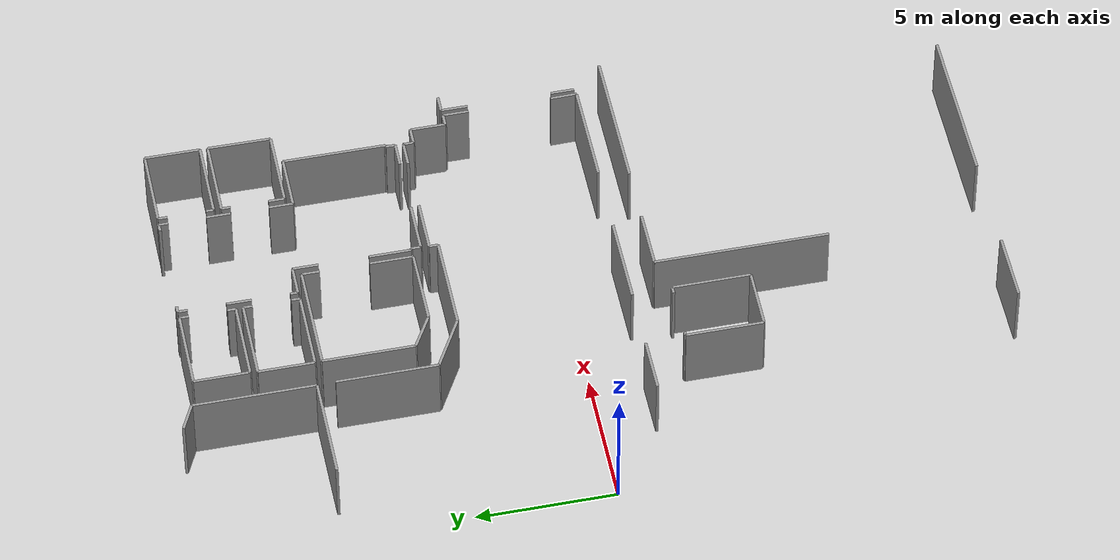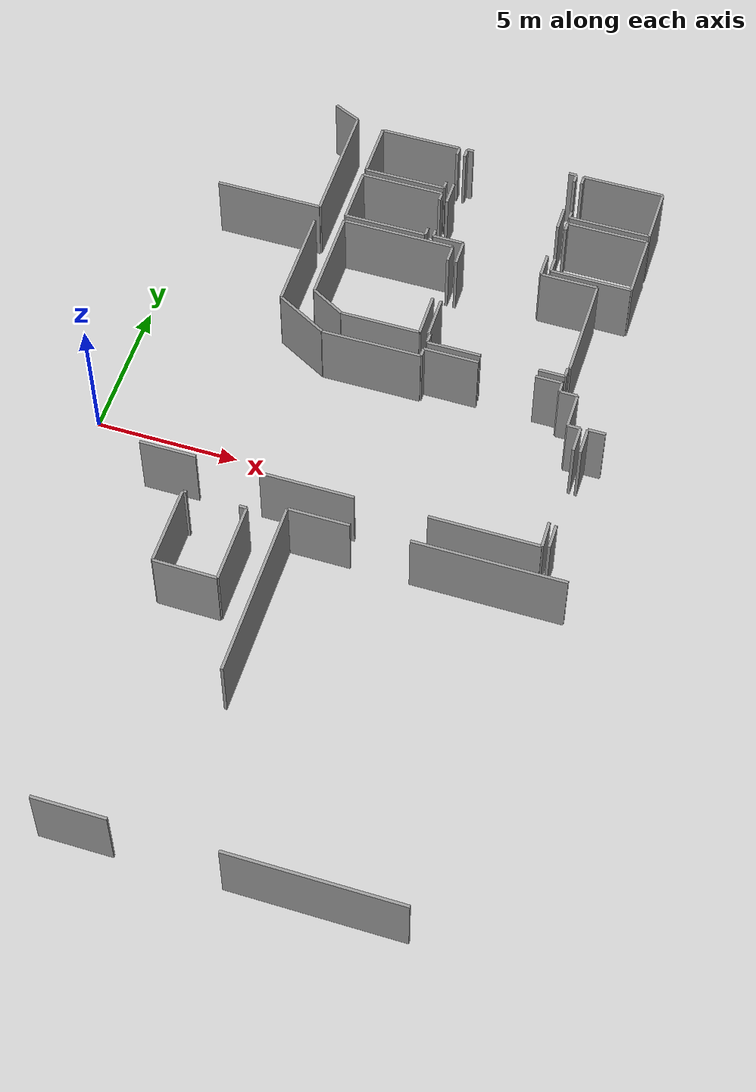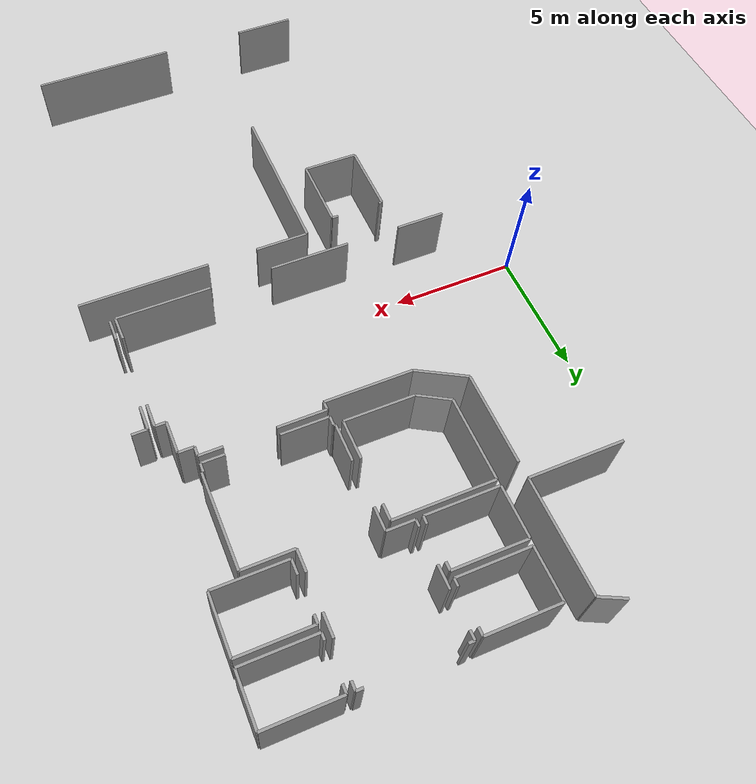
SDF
<sdf version="1.6">
 <world name="default">
  <model name="ground_plane">
   <static>1</static>
   <link name="link">
    <collision name="collision">
     <geometry><plane><normal>0 0 1</normal><size>100 100</size></plane></geometry>
     <surface><friction><ode><mu>100</mu><mu2>50</mu2></ode></friction></surface>
    </collision>
    <visual name="visual">
     <cast_shadows>0</cast_shadows>
     <geometry><plane><normal>0 0 1</normal><size>100 100</size></plane></geometry>
     <material>
      <script><uri>file://media/materials/scripts/gazebo.material</uri><name>Gazebo/Grey</name></script>
     </material>
    </visual>
   </link>
  </model>
  <model name="50056457">
   <static>1</static>
   <link name="Wall_110">
    <collision name="Wall_110_Collision">
     <geometry><box><size>3.77950755105 0.1 2.5</size></box></geometry>
     <pose>1.88975377553 0 1.25 0 0 0</pose>
    </collision>
    <visual name="Wall_110_Visual">
     <pose>1.88975377553 0 1.25 0 0 0</pose>
     <geometry><box><size>3.77950755105 0.1 2.5</size></box></geometry>
     <material>
      <script><uri>file://media/materials/scripts/gazebo.material</uri><name>Gazebo/Grey</name></script>
      <ambient>1 1 1 1</ambient>
     </material>
    </visual>
    <pose>70.8133792975 -16.9040258167 0 0 0 3.14159265359</pose>
   </link>
   <link name="Wall_111">
    <collision name="Wall_111_Collision">
     <geometry><box><size>3.22980103843 0.1 2.5</size></box></geometry>
     <pose>1.61490051921 0 1.25 0 0 0</pose>
    </collision>
    <visual name="Wall_111_Visual">
     <pose>1.61490051921 0 1.25 0 0 0</pose>
     <geometry><box><size>3.22980103843 0.1 2.5</size></box></geometry>
     <material>
      <script><uri>file://media/materials/scripts/gazebo.material</uri><name>Gazebo/Grey</name></script>
      <ambient>1 1 1 1</ambient>
     </material>
    </visual>
    <pose>64.5673919856 -16.9040258167 0 0 0 3.14159265359</pose>
   </link>
   <link name="Wall_112">
    <collision name="Wall_112_Collision">
     <geometry><box><size>1.94912885493 0.1 2.5</size></box></geometry>
     <pose>0.974564427467 0 1.25 0 0 0</pose>
    </collision>
    <visual name="Wall_112_Visual">
     <pose>0.974564427467 0 1.25 0 0 0</pose>
     <geometry><box><size>1.94912885493 0.1 2.5</size></box></geometry>
     <material>
      <script><uri>file://media/materials/scripts/gazebo.material</uri><name>Gazebo/Grey</name></script>
      <ambient>1 1 1 1</ambient>
     </material>
    </visual>
    <pose>59.1521475822 -16.9040258167 0 0 0 3.14159265359</pose>
   </link>
   <link name="Wall_141">
    <collision name="Wall_141_Collision">
     <geometry><box><size>1.02693180134 0.1 2.5</size></box></geometry>
     <pose>0.51346590067 0 1.25 0 0 0</pose>
    </collision>
    <visual name="Wall_141_Visual">
     <pose>0.51346590067 0 1.25 0 0 0</pose>
     <geometry><box><size>1.02693180134 0.1 2.5</size></box></geometry>
     <material>
      <script><uri>file://media/materials/scripts/gazebo.material</uri><name>Gazebo/Grey</name></script>
      <ambient>1 1 1 1</ambient>
     </material>
    </visual>
    <pose>58.7042511202 -0.716735979943 0 0 0 -0.438341227455</pose>
   </link>
   <link name="Wall_142">
    <collision name="Wall_142_Collision">
     <geometry><box><size>4.35309961631 0.1 2.5</size></box></geometry>
     <pose>2.17654980815 0 1.25 0 0 0</pose>
    </collision>
    <visual name="Wall_142_Visual">
     <pose>2.17654980815 0 1.25 0 0 0</pose>
     <geometry><box><size>4.35309961631 0.1 2.5</size></box></geometry>
     <material>
      <script><uri>file://media/materials/scripts/gazebo.material</uri><name>Gazebo/Grey</name></script>
      <ambient>1 1 1 1</ambient>
     </material>
    </visual>
    <pose>59.6340936619 -1.15260496515 0 0 0 -1.57079632679</pose>
   </link>
   <link name="Wall_143">
    <collision name="Wall_143_Collision">
     <geometry><box><size>3.74545793348 0.1 2.5</size></box></geometry>
     <pose>1.87272896674 0 1.25 0 0 0</pose>
    </collision>
    <visual name="Wall_143_Visual">
     <pose>1.87272896674 0 1.25 0 0 0</pose>
     <geometry><box><size>3.74545793348 0.1 2.5</size></box></geometry>
     <material>
      <script><uri>file://media/materials/scripts/gazebo.material</uri><name>Gazebo/Grey</name></script>
      <ambient>1 1 1 1</ambient>
     </material>
    </visual>
    <pose>59.6340936619 -5.50570458145 0 0 0 3.14159265359</pose>
   </link>
   <link name="Wall_146">
    <collision name="Wall_146_Collision">
     <geometry><box><size>3.60875125992 0.1 2.5</size></box></geometry>
     <pose>1.80437562996 0 1.25 0 0 0</pose>
    </collision>
    <visual name="Wall_146_Visual">
     <pose>1.80437562996 0 1.25 0 0 0</pose>
     <geometry><box><size>3.60875125992 0.1 2.5</size></box></geometry>
     <material>
      <script><uri>file://media/materials/scripts/gazebo.material</uri><name>Gazebo/Grey</name></script>
      <ambient>1 1 1 1</ambient>
     </material>
    </visual>
    <pose>59.6534053853 -6.15180031 0 0 0 -1.57079632679</pose>
   </link>
   <link name="Wall_147">
    <collision name="Wall_147_Collision">
     <geometry><box><size>2.04904807217 0.1 2.5</size></box></geometry>
     <pose>1.02452403608 0 1.25 0 0 0</pose>
    </collision>
    <visual name="Wall_147_Visual">
     <pose>1.02452403608 0 1.25 0 0 0</pose>
     <geometry><box><size>2.04904807217 0.1 2.5</size></box></geometry>
     <material>
      <script><uri>file://media/materials/scripts/gazebo.material</uri><name>Gazebo/Grey</name></script>
      <ambient>1 1 1 1</ambient>
     </material>
    </visual>
    <pose>59.6534053853 -9.76055156992 0 0 0 -0.504994664369</pose>
   </link>
   <link name="Wall_148">
    <collision name="Wall_148_Collision">
     <geometry><box><size>3.48627427729 0.1 2.5</size></box></geometry>
     <pose>1.74313713865 0 1.25 0 0 0</pose>
    </collision>
    <visual name="Wall_148_Visual">
     <pose>1.74313713865 0 1.25 0 0 0</pose>
     <geometry><box><size>3.48627427729 0.1 2.5</size></box></geometry>
     <material>
      <script><uri>file://media/materials/scripts/gazebo.material</uri><name>Gazebo/Grey</name></script>
      <ambient>1 1 1 1</ambient>
     </material>
    </visual>
    <pose>61.4466852443 -10.7518867046 0 0 0 0.0</pose>
   </link>
   <link name="Wall_149">
    <collision name="Wall_149_Collision">
     <geometry><box><size>0.323047864276 0.1 2.5</size></box></geometry>
     <pose>0.161523932138 0 1.25 0 0 0</pose>
    </collision>
    <visual name="Wall_149_Visual">
     <pose>0.161523932138 0 1.25 0 0 0</pose>
     <geometry><box><size>0.323047864276 0.1 2.5</size></box></geometry>
     <material>
      <script><uri>file://media/materials/scripts/gazebo.material</uri><name>Gazebo/Grey</name></script>
      <ambient>1 1 1 1</ambient>
     </material>
    </visual>
    <pose>64.9329595216 -10.7518867046 0 0 0 1.57079632679</pose>
   </link>
   <link name="Wall_150">
    <collision name="Wall_150_Collision">
     <geometry><box><size>1.91592624277 0.1 2.5</size></box></geometry>
     <pose>0.957963121384 0 1.25 0 0 0</pose>
    </collision>
    <visual name="Wall_150_Visual">
     <pose>0.957963121384 0 1.25 0 0 0</pose>
     <geometry><box><size>1.91592624277 0.1 2.5</size></box></geometry>
     <material>
      <script><uri>file://media/materials/scripts/gazebo.material</uri><name>Gazebo/Grey</name></script>
      <ambient>1 1 1 1</ambient>
     </material>
    </visual>
    <pose>64.9329595216 -10.4288388403 0 0 0 0.0</pose>
   </link>
   <link name="Wall_151">
    <collision name="Wall_151_Collision">
     <geometry><box><size>0.924421707055 0.1 2.5</size></box></geometry>
     <pose>0.462210853527 0 1.25 0 0 0</pose>
    </collision>
    <visual name="Wall_151_Visual">
     <pose>0.462210853527 0 1.25 0 0 0</pose>
     <geometry><box><size>0.924421707055 0.1 2.5</size></box></geometry>
     <material>
      <script><uri>file://media/materials/scripts/gazebo.material</uri><name>Gazebo/Grey</name></script>
      <ambient>1 1 1 1</ambient>
     </material>
    </visual>
    <pose>68.8203755622 -10.4288388403 0 0 0 0.0</pose>
   </link>
   <link name="Wall_152">
    <collision name="Wall_152_Collision">
     <geometry><box><size>0.367600348966 0.1 2.5</size></box></geometry>
     <pose>0.183800174483 0 1.25 0 0 0</pose>
    </collision>
    <visual name="Wall_152_Visual">
     <pose>0.183800174483 0 1.25 0 0 0</pose>
     <geometry><box><size>0.367600348966 0.1 2.5</size></box></geometry>
     <material>
      <script><uri>file://media/materials/scripts/gazebo.material</uri><name>Gazebo/Grey</name></script>
      <ambient>1 1 1 1</ambient>
     </material>
    </visual>
    <pose>69.7447972693 -10.4288388403 0 0 0 -1.57079632679</pose>
   </link>
   <link name="Wall_153">
    <collision name="Wall_153_Collision">
     <geometry><box><size>0.612723715305 0.1 2.5</size></box></geometry>
     <pose>0.306361857652 0 1.25 0 0 0</pose>
    </collision>
    <visual name="Wall_153_Visual">
     <pose>0.306361857652 0 1.25 0 0 0</pose>
     <geometry><box><size>0.612723715305 0.1 2.5</size></box></geometry>
     <material>
      <script><uri>file://media/materials/scripts/gazebo.material</uri><name>Gazebo/Grey</name></script>
      <ambient>1 1 1 1</ambient>
     </material>
    </visual>
    <pose>69.7447972693 -10.7964391892 0 0 0 0.0</pose>
   </link>
   <link name="Wall_154">
    <collision name="Wall_154_Collision">
     <geometry><box><size>1.26203806442 0.1 2.5</size></box></geometry>
     <pose>0.631019032212 0 1.25 0 0 0</pose>
    </collision>
    <visual name="Wall_154_Visual">
     <pose>0.631019032212 0 1.25 0 0 0</pose>
     <geometry><box><size>1.26203806442 0.1 2.5</size></box></geometry>
     <material>
      <script><uri>file://media/materials/scripts/gazebo.material</uri><name>Gazebo/Grey</name></script>
      <ambient>1 1 1 1</ambient>
     </material>
    </visual>
    <pose>70.3575209846 -10.7964391892 0 0 0 -1.57079632679</pose>
   </link>
   <link name="Wall_155">
    <collision name="Wall_155_Collision">
     <geometry><box><size>0.434344375461 0.1 2.5</size></box></geometry>
     <pose>0.21717218773 0 1.25 0 0 0</pose>
    </collision>
    <visual name="Wall_155_Visual">
     <pose>0.21717218773 0 1.25 0 0 0</pose>
     <geometry><box><size>0.434344375461 0.1 2.5</size></box></geometry>
     <material>
      <script><uri>file://media/materials/scripts/gazebo.material</uri><name>Gazebo/Grey</name></script>
      <ambient>1 1 1 1</ambient>
     </material>
    </visual>
    <pose>70.3575209846 -12.0584772537 0 0 0 0.0</pose>
   </link>
   <link name="Wall_156">
    <collision name="Wall_156_Collision">
     <geometry><box><size>0.920186679993 0.1 2.5</size></box></geometry>
     <pose>0.460093339996 0 1.25 0 0 0</pose>
    </collision>
    <visual name="Wall_156_Visual">
     <pose>0.460093339996 0 1.25 0 0 0</pose>
     <geometry><box><size>0.920186679993 0.1 2.5</size></box></geometry>
     <material>
      <script><uri>file://media/materials/scripts/gazebo.material</uri><name>Gazebo/Grey</name></script>
      <ambient>1 1 1 1</ambient>
     </material>
    </visual>
    <pose>70.79186536 -12.0584772537 0 0 0 -1.57079632679</pose>
   </link>
   <link name="Wall_157">
    <collision name="Wall_157_Collision">
     <geometry><box><size>0.950752917011 0.1 2.5</size></box></geometry>
     <pose>0.475376458505 0 1.25 0 0 0</pose>
    </collision>
    <visual name="Wall_157_Visual">
     <pose>0.475376458505 0 1.25 0 0 0</pose>
     <geometry><box><size>0.950752917011 0.1 2.5</size></box></geometry>
     <material>
      <script><uri>file://media/materials/scripts/gazebo.material</uri><name>Gazebo/Grey</name></script>
      <ambient>1 1 1 1</ambient>
     </material>
    </visual>
    <pose>70.79186536 -15.953516343 0 0 0 -1.54816607922</pose>
   </link>
   <link name="Wall_167">
    <collision name="Wall_167_Collision">
     <geometry><box><size>2.79410145431 0.1 2.5</size></box></geometry>
     <pose>1.39705072715 0 1.25 0 0 0</pose>
    </collision>
    <visual name="Wall_167_Visual">
     <pose>1.39705072715 0 1.25 0 0 0</pose>
     <geometry><box><size>2.79410145431 0.1 2.5</size></box></geometry>
     <material>
      <script><uri>file://media/materials/scripts/gazebo.material</uri><name>Gazebo/Grey</name></script>
      <ambient>1 1 1 1</ambient>
     </material>
    </visual>
    <pose>61.3968813261 -21.1241455833 0 0 0 1.57079632679</pose>
   </link>
   <link name="Wall_168">
    <collision name="Wall_168_Collision">
     <geometry><box><size>0.250205398812 0.1 2.5</size></box></geometry>
     <pose>0.125102699406 0 1.25 0 0 0</pose>
    </collision>
    <visual name="Wall_168_Visual">
     <pose>0.125102699406 0 1.25 0 0 0</pose>
     <geometry><box><size>0.250205398812 0.1 2.5</size></box></geometry>
     <material>
      <script><uri>file://media/materials/scripts/gazebo.material</uri><name>Gazebo/Grey</name></script>
      <ambient>1 1 1 1</ambient>
     </material>
    </visual>
    <pose>61.3968813261 -18.330044129 0 0 0 3.14159265359</pose>
   </link>
   <link name="Wall_169">
    <collision name="Wall_169_Collision">
     <geometry><box><size>0.134843261648 0.1 2.5</size></box></geometry>
     <pose>0.0674216308242 0 1.25 0 0 0</pose>
    </collision>
    <visual name="Wall_169_Visual">
     <pose>0.0674216308242 0 1.25 0 0 0</pose>
     <geometry><box><size>0.134843261648 0.1 2.5</size></box></geometry>
     <material>
      <script><uri>file://media/materials/scripts/gazebo.material</uri><name>Gazebo/Grey</name></script>
      <ambient>1 1 1 1</ambient>
     </material>
    </visual>
    <pose>59.3481446346 -18.330044129 0 0 0 3.14159265359</pose>
   </link>
   <link name="Wall_170">
    <collision name="Wall_170_Collision">
     <geometry><box><size>2.76886069302 0.1 2.5</size></box></geometry>
     <pose>1.38443034651 0 1.25 0 0 0</pose>
    </collision>
    <visual name="Wall_170_Visual">
     <pose>1.38443034651 0 1.25 0 0 0</pose>
     <geometry><box><size>2.76886069302 0.1 2.5</size></box></geometry>
     <material>
      <script><uri>file://media/materials/scripts/gazebo.material</uri><name>Gazebo/Grey</name></script>
      <ambient>1 1 1 1</ambient>
     </material>
    </visual>
    <pose>59.213301373 -18.330044129 0 0 0 -1.57079632679</pose>
   </link>
   <link name="Wall_171">
    <collision name="Wall_171_Collision">
     <geometry><box><size>2.18372583158 0.1 2.5</size></box></geometry>
     <pose>1.09186291579 0 1.25 0 0 0</pose>
    </collision>
    <visual name="Wall_171_Visual">
     <pose>1.09186291579 0 1.25 0 0 0</pose>
     <geometry><box><size>2.18372583158 0.1 2.5</size></box></geometry>
     <material>
      <script><uri>file://media/materials/scripts/gazebo.material</uri><name>Gazebo/Grey</name></script>
      <ambient>1 1 1 1</ambient>
     </material>
    </visual>
    <pose>59.213301373 -21.098904822 0 0 0 -0.0115588335256</pose>
   </link>
   <link name="Wall_173">
    <collision name="Wall_173_Collision">
     <geometry><box><size>5.84501494965 0.1 2.5</size></box></geometry>
     <pose>2.92250747482 0 1.25 0 0 0</pose>
    </collision>
    <visual name="Wall_173_Visual">
     <pose>2.92250747482 0 1.25 0 0 0</pose>
     <geometry><box><size>5.84501494965 0.1 2.5</size></box></geometry>
     <material>
      <script><uri>file://media/materials/scripts/gazebo.material</uri><name>Gazebo/Grey</name></script>
      <ambient>1 1 1 1</ambient>
     </material>
    </visual>
    <pose>70.4654294741 -30.0258336651 0 0 0 3.14159265359</pose>
   </link>
   <link name="Wall_174">
    <collision name="Wall_174_Collision">
     <geometry><box><size>2.45919551426 0.1 2.5</size></box></geometry>
     <pose>1.22959775713 0 1.25 0 0 0</pose>
    </collision>
    <visual name="Wall_174_Visual">
     <pose>1.22959775713 0 1.25 0 0 0</pose>
     <geometry><box><size>2.45919551426 0.1 2.5</size></box></geometry>
     <material>
      <script><uri>file://media/materials/scripts/gazebo.material</uri><name>Gazebo/Grey</name></script>
      <ambient>1 1 1 1</ambient>
     </material>
    </visual>
    <pose>61.1336320439 -30.0258336651 0 0 0 3.14159265359</pose>
   </link>
   <link name="Wall_177">
    <collision name="Wall_177_Collision">
     <geometry><box><size>6.24022767505 0.1 2.5</size></box></geometry>
     <pose>3.12011383753 0 1.25 0 0 0</pose>
    </collision>
    <visual name="Wall_177_Visual">
     <pose>3.12011383753 0 1.25 0 0 0</pose>
     <geometry><box><size>6.24022767505 0.1 2.5</size></box></geometry>
     <material>
      <script><uri>file://media/materials/scripts/gazebo.material</uri><name>Gazebo/Grey</name></script>
      <ambient>1 1 1 1</ambient>
     </material>
    </visual>
    <pose>62.6385912606 -24.2070758832 0 0 0 1.57079632679</pose>
   </link>
   <link name="Wall_178">
    <collision name="Wall_178_Collision">
     <geometry><box><size>2.12649178828 0.1 2.5</size></box></geometry>
     <pose>1.06324589414 0 1.25 0 0 0</pose>
    </collision>
    <visual name="Wall_178_Visual">
     <pose>1.06324589414 0 1.25 0 0 0</pose>
     <geometry><box><size>2.12649178828 0.1 2.5</size></box></geometry>
     <material>
      <script><uri>file://media/materials/scripts/gazebo.material</uri><name>Gazebo/Grey</name></script>
      <ambient>1 1 1 1</ambient>
     </material>
    </visual>
    <pose>62.6385912606 -17.9668482082 0 0 0 0.0</pose>
   </link>
   <link name="Wall_179">
    <collision name="Wall_179_Collision">
     <geometry><box><size>5.19654760594 0.1 2.5</size></box></geometry>
     <pose>2.59827380297 0 1.25 0 0 0</pose>
    </collision>
    <visual name="Wall_179_Visual">
     <pose>2.59827380297 0 1.25 0 0 0</pose>
     <geometry><box><size>5.19654760594 0.1 2.5</size></box></geometry>
     <material>
      <script><uri>file://media/materials/scripts/gazebo.material</uri><name>Gazebo/Grey</name></script>
      <ambient>1 1 1 1</ambient>
     </material>
    </visual>
    <pose>66.768081448 -17.9668482082 0 0 0 0.0</pose>
   </link>
   <link name="Wall_183">
    <collision name="Wall_183_Collision">
     <geometry><box><size>0.901044357673 0.1 2.5</size></box></geometry>
     <pose>0.450522178837 0 1.25 0 0 0</pose>
    </collision>
    <visual name="Wall_183_Visual">
     <pose>0.450522178837 0 1.25 0 0 0</pose>
     <geometry><box><size>0.901044357673 0.1 2.5</size></box></geometry>
     <material>
      <script><uri>file://media/materials/scripts/gazebo.material</uri><name>Gazebo/Grey</name></script>
      <ambient>1 1 1 1</ambient>
     </material>
    </visual>
    <pose>69.7559777407 -10.1393323903 0 0 0 3.14159265359</pose>
   </link>
   <link name="Wall_184">
    <collision name="Wall_184_Collision">
     <geometry><box><size>1.86967974725 0.1 2.5</size></box></geometry>
     <pose>0.934839873627 0 1.25 0 0 0</pose>
    </collision>
    <visual name="Wall_184_Visual">
     <pose>0.934839873627 0 1.25 0 0 0</pose>
     <geometry><box><size>1.86967974725 0.1 2.5</size></box></geometry>
     <material>
      <script><uri>file://media/materials/scripts/gazebo.material</uri><name>Gazebo/Grey</name></script>
      <ambient>1 1 1 1</ambient>
     </material>
    </visual>
    <pose>66.8361806832 -10.1393323903 0 0 0 3.14159265359</pose>
   </link>
   <link name="Wall_185">
    <collision name="Wall_185_Collision">
     <geometry><box><size>0.356419877523 0.1 2.5</size></box></geometry>
     <pose>0.178209938762 0 1.25 0 0 0</pose>
    </collision>
    <visual name="Wall_185_Visual">
     <pose>0.178209938762 0 1.25 0 0 0</pose>
     <geometry><box><size>0.356419877523 0.1 2.5</size></box></geometry>
     <material>
      <script><uri>file://media/materials/scripts/gazebo.material</uri><name>Gazebo/Grey</name></script>
      <ambient>1 1 1 1</ambient>
     </material>
    </visual>
    <pose>64.9665009359 -10.1393323903 0 0 0 1.57079632679</pose>
   </link>
   <link name="Wall_186">
    <collision name="Wall_186_Collision">
     <geometry><box><size>0.0669134275768 0.1 2.5</size></box></geometry>
     <pose>0.0334567137884 0 1.25 0 0 0</pose>
    </collision>
    <visual name="Wall_186_Visual">
     <pose>0.0334567137884 0 1.25 0 0 0</pose>
     <geometry><box><size>0.0669134275768 0.1 2.5</size></box></geometry>
     <material>
      <script><uri>file://media/materials/scripts/gazebo.material</uri><name>Gazebo/Grey</name></script>
      <ambient>1 1 1 1</ambient>
     </material>
    </visual>
    <pose>64.9665009359 -9.78291251281 0 0 0 3.14159265359</pose>
   </link>
   <link name="Wall_187">
    <collision name="Wall_187_Collision">
     <geometry><box><size>1.49259293767 0.1 2.5</size></box></geometry>
     <pose>0.746296468834 0 1.25 0 0 0</pose>
    </collision>
    <visual name="Wall_187_Visual">
     <pose>0.746296468834 0 1.25 0 0 0</pose>
     <geometry><box><size>1.49259293767 0.1 2.5</size></box></geometry>
     <material>
      <script><uri>file://media/materials/scripts/gazebo.material</uri><name>Gazebo/Grey</name></script>
      <ambient>1 1 1 1</ambient>
     </material>
    </visual>
    <pose>64.8995875084 -9.78291251281 0 0 0 1.57079632679</pose>
   </link>
   <link name="Wall_188">
    <collision name="Wall_188_Collision">
     <geometry><box><size>0.910700219374 0.1 2.5</size></box></geometry>
     <pose>0.455350109687 0 1.25 0 0 0</pose>
    </collision>
    <visual name="Wall_188_Visual">
     <pose>0.455350109687 0 1.25 0 0 0</pose>
     <geometry><box><size>0.910700219374 0.1 2.5</size></box></geometry>
     <material>
      <script><uri>file://media/materials/scripts/gazebo.material</uri><name>Gazebo/Grey</name></script>
      <ambient>1 1 1 1</ambient>
     </material>
    </visual>
    <pose>64.8995875084 -6.49703971608 0 0 0 1.57079632679</pose>
   </link>
   <link name="Wall_189">
    <collision name="Wall_189_Collision">
     <geometry><box><size>1.08840195489 0.1 2.5</size></box></geometry>
     <pose>0.544200977444 0 1.25 0 0 0</pose>
    </collision>
    <visual name="Wall_189_Visual">
     <pose>0.544200977444 0 1.25 0 0 0</pose>
     <geometry><box><size>1.08840195489 0.1 2.5</size></box></geometry>
     <material>
      <script><uri>file://media/materials/scripts/gazebo.material</uri><name>Gazebo/Grey</name></script>
      <ambient>1 1 1 1</ambient>
     </material>
    </visual>
    <pose>64.8995875084 -5.58633949671 0 0 0 3.14159265359</pose>
   </link>
   <link name="Wall_190">
    <collision name="Wall_190_Collision">
     <geometry><box><size>0.273921550359 0.1 2.5</size></box></geometry>
     <pose>0.136960775179 0 1.25 0 0 0</pose>
    </collision>
    <visual name="Wall_190_Visual">
     <pose>0.136960775179 0 1.25 0 0 0</pose>
     <geometry><box><size>0.273921550359 0.1 2.5</size></box></geometry>
     <material>
      <script><uri>file://media/materials/scripts/gazebo.material</uri><name>Gazebo/Grey</name></script>
      <ambient>1 1 1 1</ambient>
     </material>
    </visual>
    <pose>63.8111855535 -5.58633949671 0 0 0 1.57079632679</pose>
   </link>
   <link name="Wall_191">
    <collision name="Wall_191_Collision">
     <geometry><box><size>0.884443051591 0.1 2.5</size></box></geometry>
     <pose>0.442221525796 0 1.25 0 0 0</pose>
    </collision>
    <visual name="Wall_191_Visual">
     <pose>0.442221525796 0 1.25 0 0 0</pose>
     <geometry><box><size>0.884443051591 0.1 2.5</size></box></geometry>
     <material>
      <script><uri>file://media/materials/scripts/gazebo.material</uri><name>Gazebo/Grey</name></script>
      <ambient>1 1 1 1</ambient>
     </material>
    </visual>
    <pose>63.8111855535 -3.95043324327 0 0 0 1.57079632679</pose>
   </link>
   <link name="Wall_192">
    <collision name="Wall_192_Collision">
     <geometry><box><size>0.344222999585 0.1 2.5</size></box></geometry>
     <pose>0.172111499792 0 1.25 0 0 0</pose>
    </collision>
    <visual name="Wall_192_Visual">
     <pose>0.172111499792 0 1.25 0 0 0</pose>
     <geometry><box><size>0.344222999585 0.1 2.5</size></box></geometry>
     <material>
      <script><uri>file://media/materials/scripts/gazebo.material</uri><name>Gazebo/Grey</name></script>
      <ambient>1 1 1 1</ambient>
     </material>
    </visual>
    <pose>63.8111855535 -1.70824051566 0 0 0 1.57079632679</pose>
   </link>
   <link name="Wall_193">
    <collision name="Wall_193_Collision">
     <geometry><box><size>0.236145108967 0.1 2.5</size></box></geometry>
     <pose>0.118072554484 0 1.25 0 0 0</pose>
    </collision>
    <visual name="Wall_193_Visual">
     <pose>0.118072554484 0 1.25 0 0 0</pose>
     <geometry><box><size>0.236145108967 0.1 2.5</size></box></geometry>
     <material>
      <script><uri>file://media/materials/scripts/gazebo.material</uri><name>Gazebo/Grey</name></script>
      <ambient>1 1 1 1</ambient>
     </material>
    </visual>
    <pose>63.8111855535 -1.36401751607 0 0 0 0.0</pose>
   </link>
   <link name="Wall_194">
    <collision name="Wall_194_Collision">
     <geometry><box><size>0.267484309225 0.1 2.5</size></box></geometry>
     <pose>0.133742154612 0 1.25 0 0 0</pose>
    </collision>
    <visual name="Wall_194_Visual">
     <pose>0.133742154612 0 1.25 0 0 0</pose>
     <geometry><box><size>0.267484309225 0.1 2.5</size></box></geometry>
     <material>
      <script><uri>file://media/materials/scripts/gazebo.material</uri><name>Gazebo/Grey</name></script>
      <ambient>1 1 1 1</ambient>
     </material>
    </visual>
    <pose>67.5620643216 -1.36401751607 0 0 0 0.0</pose>
   </link>
   <link name="Wall_195">
    <collision name="Wall_195_Collision">
     <geometry><box><size>0.331179116235 0.1 2.5</size></box></geometry>
     <pose>0.165589558117 0 1.25 0 0 0</pose>
    </collision>
    <visual name="Wall_195_Visual">
     <pose>0.165589558117 0 1.25 0 0 0</pose>
     <geometry><box><size>0.331179116235 0.1 2.5</size></box></geometry>
     <material>
      <script><uri>file://media/materials/scripts/gazebo.material</uri><name>Gazebo/Grey</name></script>
      <ambient>1 1 1 1</ambient>
     </material>
    </visual>
    <pose>67.8295486308 -1.36401751607 0 0 0 -1.57079632679</pose>
   </link>
   <link name="Wall_196">
    <collision name="Wall_196_Collision">
     <geometry><box><size>0.871568569323 0.1 2.5</size></box></geometry>
     <pose>0.435784284662 0 1.25 0 0 0</pose>
    </collision>
    <visual name="Wall_196_Visual">
     <pose>0.435784284662 0 1.25 0 0 0</pose>
     <geometry><box><size>0.871568569323 0.1 2.5</size></box></geometry>
     <material>
      <script><uri>file://media/materials/scripts/gazebo.material</uri><name>Gazebo/Grey</name></script>
      <ambient>1 1 1 1</ambient>
     </material>
    </visual>
    <pose>67.8295486308 -3.04108823255 0 0 0 -1.57079632679</pose>
   </link>
   <link name="Wall_197">
    <collision name="Wall_197_Collision">
     <geometry><box><size>0.849038225354 0.1 2.5</size></box></geometry>
     <pose>0.424519112677 0 1.25 0 0 0</pose>
    </collision>
    <visual name="Wall_197_Visual">
     <pose>0.424519112677 0 1.25 0 0 0</pose>
     <geometry><box><size>0.849038225354 0.1 2.5</size></box></geometry>
     <material>
      <script><uri>file://media/materials/scripts/gazebo.material</uri><name>Gazebo/Grey</name></script>
      <ambient>1 1 1 1</ambient>
     </material>
    </visual>
    <pose>67.8295486308 -5.27481090604 0 0 0 -1.57079632679</pose>
   </link>
   <link name="Wall_198">
    <collision name="Wall_198_Collision">
     <geometry><box><size>1.99368133962 0.1 2.5</size></box></geometry>
     <pose>0.996840669812 0 1.25 0 0 0</pose>
    </collision>
    <visual name="Wall_198_Visual">
     <pose>0.996840669812 0 1.25 0 0 0</pose>
     <geometry><box><size>1.99368133962 0.1 2.5</size></box></geometry>
     <material>
      <script><uri>file://media/materials/scripts/gazebo.material</uri><name>Gazebo/Grey</name></script>
      <ambient>1 1 1 1</ambient>
     </material>
    </visual>
    <pose>67.8295486308 -6.1238491314 0 0 0 0.0</pose>
   </link>
   <link name="Wall_199">
    <collision name="Wall_199_Collision">
     <geometry><box><size>3.67634229183 0.1 2.5</size></box></geometry>
     <pose>1.83817114591 0 1.25 0 0 0</pose>
    </collision>
    <visual name="Wall_199_Visual">
     <pose>1.83817114591 0 1.25 0 0 0</pose>
     <geometry><box><size>3.67634229183 0.1 2.5</size></box></geometry>
     <material>
      <script><uri>file://media/materials/scripts/gazebo.material</uri><name>Gazebo/Grey</name></script>
      <ambient>1 1 1 1</ambient>
     </material>
    </visual>
    <pose>69.8232299704 -6.1238491314 0 0 0 -1.57079632679</pose>
   </link>
   <link name="Wall_200">
    <collision name="Wall_200_Collision">
     <geometry><box><size>0.0581045712882 0.1 2.5</size></box></geometry>
     <pose>0.0290522856441 0 1.25 0 0 0</pose>
    </collision>
    <visual name="Wall_200_Visual">
     <pose>0.0290522856441 0 1.25 0 0 0</pose>
     <geometry><box><size>0.0581045712882 0.1 2.5</size></box></geometry>
     <material>
      <script><uri>file://media/materials/scripts/gazebo.material</uri><name>Gazebo/Grey</name></script>
      <ambient>1 1 1 1</ambient>
     </material>
    </visual>
    <pose>69.8232299704 -9.80019142322 0 0 0 3.14159265359</pose>
   </link>
   <link name="Wall_201">
    <collision name="Wall_201_Collision">
     <geometry><box><size>0.339264314699 0.1 2.5</size></box></geometry>
     <pose>0.169632157349 0 1.25 0 0 0</pose>
    </collision>
    <visual name="Wall_201_Visual">
     <pose>0.169632157349 0 1.25 0 0 0</pose>
     <geometry><box><size>0.339264314699 0.1 2.5</size></box></geometry>
     <material>
      <script><uri>file://media/materials/scripts/gazebo.material</uri><name>Gazebo/Grey</name></script>
      <ambient>1 1 1 1</ambient>
     </material>
    </visual>
    <pose>69.7651253992 -9.80019142322 0 0 0 -1.59776281527</pose>
   </link>
   <link name="Wall_202">
    <collision name="Wall_202_Collision">
     <geometry><box><size>2.78292098287 0.1 2.5</size></box></geometry>
     <pose>1.39146049143 0 1.25 0 0 0</pose>
    </collision>
    <visual name="Wall_202_Visual">
     <pose>1.39146049143 0 1.25 0 0 0</pose>
     <geometry><box><size>2.78292098287 0.1 2.5</size></box></geometry>
     <material>
      <script><uri>file://media/materials/scripts/gazebo.material</uri><name>Gazebo/Grey</name></script>
      <ambient>1 1 1 1</ambient>
     </material>
    </visual>
    <pose>64.5972065762 -9.80391824704 0 0 0 3.14159265359</pose>
   </link>
   <link name="Wall_203">
    <collision name="Wall_203_Collision">
     <geometry><box><size>1.34642491077 0.1 2.5</size></box></geometry>
     <pose>0.673212455384 0 1.25 0 0 0</pose>
    </collision>
    <visual name="Wall_203_Visual">
     <pose>0.673212455384 0 1.25 0 0 0</pose>
     <geometry><box><size>1.34642491077 0.1 2.5</size></box></geometry>
     <material>
      <script><uri>file://media/materials/scripts/gazebo.material</uri><name>Gazebo/Grey</name></script>
      <ambient>1 1 1 1</ambient>
     </material>
    </visual>
    <pose>61.8142855933 -9.80391824704 0 0 0 2.62322681384</pose>
   </link>
   <link name="Wall_204">
    <collision name="Wall_204_Collision">
     <geometry><box><size>3.28299297833 0.1 2.5</size></box></geometry>
     <pose>1.64149648916 0 1.25 0 0 0</pose>
    </collision>
    <visual name="Wall_204_Visual">
     <pose>1.64149648916 0 1.25 0 0 0</pose>
     <geometry><box><size>3.28299297833 0.1 2.5</size></box></geometry>
     <material>
      <script><uri>file://media/materials/scripts/gazebo.material</uri><name>Gazebo/Grey</name></script>
      <ambient>1 1 1 1</ambient>
     </material>
    </visual>
    <pose>60.6447405199 -9.13681678426 0 0 0 1.57079632679</pose>
   </link>
   <link name="Wall_205">
    <collision name="Wall_205_Collision">
     <geometry><box><size>3.95043324327 0.1 2.5</size></box></geometry>
     <pose>1.97521662163 0 1.25 0 0 0</pose>
    </collision>
    <visual name="Wall_205_Visual">
     <pose>1.97521662163 0 1.25 0 0 0</pose>
     <geometry><box><size>3.95043324327 0.1 2.5</size></box></geometry>
     <material>
      <script><uri>file://media/materials/scripts/gazebo.material</uri><name>Gazebo/Grey</name></script>
      <ambient>1 1 1 1</ambient>
     </material>
    </visual>
    <pose>60.6447405199 -5.85382380593 0 0 0 0.0</pose>
   </link>
   <link name="Wall_206">
    <collision name="Wall_206_Collision">
     <geometry><box><size>0.631696636542 0.1 2.5</size></box></geometry>
     <pose>0.315848318271 0 1.25 0 0 0</pose>
    </collision>
    <visual name="Wall_206_Visual">
     <pose>0.315848318271 0 1.25 0 0 0</pose>
     <geometry><box><size>0.631696636542 0.1 2.5</size></box></geometry>
     <material>
      <script><uri>file://media/materials/scripts/gazebo.material</uri><name>Gazebo/Grey</name></script>
      <ambient>1 1 1 1</ambient>
     </material>
    </visual>
    <pose>64.5951737632 -5.85382380593 0 0 0 -1.57079632679</pose>
   </link>
   <link name="Wall_207">
    <collision name="Wall_207_Collision">
     <geometry><box><size>1.54985183668 0.1 2.5</size></box></geometry>
     <pose>0.774925918341 0 1.25 0 0 0</pose>
    </collision>
    <visual name="Wall_207_Visual">
     <pose>0.774925918341 0 1.25 0 0 0</pose>
     <geometry><box><size>1.54985183668 0.1 2.5</size></box></geometry>
     <material>
      <script><uri>file://media/materials/scripts/gazebo.material</uri><name>Gazebo/Grey</name></script>
      <ambient>1 1 1 1</ambient>
     </material>
    </visual>
    <pose>64.5951737632 -8.25406774349 0 0 0 -1.56948470879</pose>
   </link>
   <link name="Wall_208">
    <collision name="Wall_208_Collision">
     <geometry><box><size>2.89828312003 0.1 2.5</size></box></geometry>
     <pose>1.44914156001 0 1.25 0 0 0</pose>
    </collision>
    <visual name="Wall_208_Visual">
     <pose>1.44914156001 0 1.25 0 0 0</pose>
     <geometry><box><size>2.89828312003 0.1 2.5</size></box></geometry>
     <material>
      <script><uri>file://media/materials/scripts/gazebo.material</uri><name>Gazebo/Grey</name></script>
      <ambient>1 1 1 1</ambient>
     </material>
    </visual>
    <pose>63.5255753284 -5.60954744501 0 0 0 3.14159265359</pose>
   </link>
   <link name="Wall_209">
    <collision name="Wall_209_Collision">
     <geometry><box><size>1.99706936127 0.1 2.5</size></box></geometry>
     <pose>0.998534680637 0 1.25 0 0 0</pose>
    </collision>
    <visual name="Wall_209_Visual">
     <pose>0.998534680637 0 1.25 0 0 0</pose>
     <geometry><box><size>1.99706936127 0.1 2.5</size></box></geometry>
     <material>
      <script><uri>file://media/materials/scripts/gazebo.material</uri><name>Gazebo/Grey</name></script>
      <ambient>1 1 1 1</ambient>
     </material>
    </visual>
    <pose>60.6272922084 -5.60954744501 0 0 0 1.57079632679</pose>
   </link>
   <link name="Wall_210">
    <collision name="Wall_210_Collision">
     <geometry><box><size>2.90743077848 0.1 2.5</size></box></geometry>
     <pose>1.45371538924 0 1.25 0 0 0</pose>
    </collision>
    <visual name="Wall_210_Visual">
     <pose>1.45371538924 0 1.25 0 0 0</pose>
     <geometry><box><size>2.90743077848 0.1 2.5</size></box></geometry>
     <material>
      <script><uri>file://media/materials/scripts/gazebo.material</uri><name>Gazebo/Grey</name></script>
      <ambient>1 1 1 1</ambient>
     </material>
    </visual>
    <pose>60.6272922084 -3.61247808373 0 0 0 0.0</pose>
   </link>
   <link name="Wall_211">
    <collision name="Wall_211_Collision">
     <geometry><box><size>0.322200858863 0.1 2.5</size></box></geometry>
     <pose>0.161100429432 0 1.25 0 0 0</pose>
    </collision>
    <visual name="Wall_211_Visual">
     <pose>0.161100429432 0 1.25 0 0 0</pose>
     <geometry><box><size>0.322200858863 0.1 2.5</size></box></geometry>
     <material>
      <script><uri>file://media/materials/scripts/gazebo.material</uri><name>Gazebo/Grey</name></script>
      <ambient>1 1 1 1</ambient>
     </material>
    </visual>
    <pose>63.5347229869 -3.61247808373 0 0 0 -1.57079632679</pose>
   </link>
   <link name="Wall_212">
    <collision name="Wall_212_Collision">
     <geometry><box><size>0.309969589672 0.1 2.5</size></box></geometry>
     <pose>0.154984794836 0 1.25 0 0 0</pose>
    </collision>
    <visual name="Wall_212_Visual">
     <pose>0.154984794836 0 1.25 0 0 0</pose>
     <geometry><box><size>0.309969589672 0.1 2.5</size></box></geometry>
     <material>
      <script><uri>file://media/materials/scripts/gazebo.material</uri><name>Gazebo/Grey</name></script>
      <ambient>1 1 1 1</ambient>
     </material>
    </visual>
    <pose>63.5347229869 -5.29971286517 0 0 0 -1.60031208286</pose>
   </link>
   <link name="Wall_213">
    <collision name="Wall_213_Collision">
     <geometry><box><size>2.87100954575 0.1 2.5</size></box></geometry>
     <pose>1.43550477288 0 1.25 0 0 0</pose>
    </collision>
    <visual name="Wall_213_Visual">
     <pose>1.43550477288 0 1.25 0 0 0</pose>
     <geometry><box><size>2.87100954575 0.1 2.5</size></box></geometry>
     <material>
      <script><uri>file://media/materials/scripts/gazebo.material</uri><name>Gazebo/Grey</name></script>
      <ambient>1 1 1 1</ambient>
     </material>
    </visual>
    <pose>63.5274387403 -3.35600484487 0 0 0 3.14159265359</pose>
   </link>
   <link name="Wall_214">
    <collision name="Wall_214_Collision">
     <geometry><box><size>1.97724943462 0.1 2.5</size></box></geometry>
     <pose>0.988624717312 0 1.25 0 0 0</pose>
    </collision>
    <visual name="Wall_214_Visual">
     <pose>0.988624717312 0 1.25 0 0 0</pose>
     <geometry><box><size>1.97724943462 0.1 2.5</size></box></geometry>
     <material>
      <script><uri>file://media/materials/scripts/gazebo.material</uri><name>Gazebo/Grey</name></script>
      <ambient>1 1 1 1</ambient>
     </material>
    </visual>
    <pose>60.6564291946 -3.35600484487 0 0 0 1.57079632679</pose>
   </link>
   <link name="Wall_215">
    <collision name="Wall_215_Collision">
     <geometry><box><size>2.87100954575 0.1 2.5</size></box></geometry>
     <pose>1.43550477288 0 1.25 0 0 0</pose>
    </collision>
    <visual name="Wall_215_Visual">
     <pose>1.43550477288 0 1.25 0 0 0</pose>
     <geometry><box><size>2.87100954575 0.1 2.5</size></box></geometry>
     <material>
      <script><uri>file://media/materials/scripts/gazebo.material</uri><name>Gazebo/Grey</name></script>
      <ambient>1 1 1 1</ambient>
     </material>
    </visual>
    <pose>60.6564291946 -1.37875541025 0 0 0 0.0</pose>
   </link>
   <link name="Wall_216">
    <collision name="Wall_216_Collision">
     <geometry><box><size>0.314916612317 0.1 2.5</size></box></geometry>
     <pose>0.157458306159 0 1.25 0 0 0</pose>
    </collision>
    <visual name="Wall_216_Visual">
     <pose>0.157458306159 0 1.25 0 0 0</pose>
     <geometry><box><size>0.314916612317 0.1 2.5</size></box></geometry>
     <material>
      <script><uri>file://media/materials/scripts/gazebo.material</uri><name>Gazebo/Grey</name></script>
      <ambient>1 1 1 1</ambient>
     </material>
    </visual>
    <pose>63.5274387403 -1.37875541025 0 0 0 -1.57079632679</pose>
   </link>
   <link name="Wall_217">
    <collision name="Wall_217_Collision">
     <geometry><box><size>0.299162311647 0.1 2.5</size></box></geometry>
     <pose>0.149581155824 0 1.25 0 0 0</pose>
    </collision>
    <visual name="Wall_217_Visual">
     <pose>0.149581155824 0 1.25 0 0 0</pose>
     <geometry><box><size>0.299162311647 0.1 2.5</size></box></geometry>
     <material>
      <script><uri>file://media/materials/scripts/gazebo.material</uri><name>Gazebo/Grey</name></script>
      <ambient>1 1 1 1</ambient>
     </material>
    </visual>
    <pose>63.5274387403 -3.05684253322 0 0 0 -1.57079632679</pose>
   </link>
   <link name="Wall_218">
    <collision name="Wall_218_Collision">
     <geometry><box><size>2.85305303101 0.1 2.5</size></box></geometry>
     <pose>1.4265265155 0 1.25 0 0 0</pose>
    </collision>
    <visual name="Wall_218_Visual">
     <pose>1.4265265155 0 1.25 0 0 0</pose>
     <geometry><box><size>2.85305303101 0.1 2.5</size></box></geometry>
     <material>
      <script><uri>file://media/materials/scripts/gazebo.material</uri><name>Gazebo/Grey</name></script>
      <ambient>1 1 1 1</ambient>
     </material>
    </visual>
    <pose>70.9627910522 -3.3509228124 0 0 0 3.14159265359</pose>
   </link>
   <link name="Wall_219">
    <collision name="Wall_219_Collision">
     <geometry><box><size>0.267484309225 0.1 2.5</size></box></geometry>
     <pose>0.133742154612 0 1.25 0 0 0</pose>
    </collision>
    <visual name="Wall_219_Visual">
     <pose>0.133742154612 0 1.25 0 0 0</pose>
     <geometry><box><size>0.267484309225 0.1 2.5</size></box></geometry>
     <material>
      <script><uri>file://media/materials/scripts/gazebo.material</uri><name>Gazebo/Grey</name></script>
      <ambient>1 1 1 1</ambient>
     </material>
    </visual>
    <pose>68.1097380212 -3.3509228124 0 0 0 1.57079632679</pose>
   </link>
   <link name="Wall_220">
    <collision name="Wall_220_Collision">
     <geometry><box><size>0.331179116235 0.1 2.5</size></box></geometry>
     <pose>0.165589558117 0 1.25 0 0 0</pose>
    </collision>
    <visual name="Wall_220_Visual">
     <pose>0.165589558117 0 1.25 0 0 0</pose>
     <geometry><box><size>0.331179116235 0.1 2.5</size></box></geometry>
     <material>
      <script><uri>file://media/materials/scripts/gazebo.material</uri><name>Gazebo/Grey</name></script>
      <ambient>1 1 1 1</ambient>
     </material>
    </visual>
    <pose>68.1097380212 -1.70790171349 0 0 0 1.57079632679</pose>
   </link>
   <link name="Wall_221">
    <collision name="Wall_221_Collision">
     <geometry><box><size>2.85949027214 0.1 2.5</size></box></geometry>
     <pose>1.42974513607 0 1.25 0 0 0</pose>
    </collision>
    <visual name="Wall_221_Visual">
     <pose>1.42974513607 0 1.25 0 0 0</pose>
     <geometry><box><size>2.85949027214 0.1 2.5</size></box></geometry>
     <material>
      <script><uri>file://media/materials/scripts/gazebo.material</uri><name>Gazebo/Grey</name></script>
      <ambient>1 1 1 1</ambient>
     </material>
    </visual>
    <pose>68.1097380212 -1.37672259726 0 0 0 0.0</pose>
   </link>
   <link name="Wall_222">
    <collision name="Wall_222_Collision">
     <geometry><box><size>1.97421071001 0.1 2.5</size></box></geometry>
     <pose>0.987105355006 0 1.25 0 0 0</pose>
    </collision>
    <visual name="Wall_222_Visual">
     <pose>0.987105355006 0 1.25 0 0 0</pose>
     <geometry><box><size>1.97421071001 0.1 2.5</size></box></geometry>
     <material>
      <script><uri>file://media/materials/scripts/gazebo.material</uri><name>Gazebo/Grey</name></script>
      <ambient>1 1 1 1</ambient>
     </material>
    </visual>
    <pose>70.9692282934 -1.37672259726 0 0 0 -1.57405699827</pose>
   </link>
   <link name="Wall_223">
    <collision name="Wall_223_Collision">
     <geometry><box><size>2.84170315848 0.1 2.5</size></box></geometry>
     <pose>1.42085157924 0 1.25 0 0 0</pose>
    </collision>
    <visual name="Wall_223_Visual">
     <pose>1.42085157924 0 1.25 0 0 0</pose>
     <geometry><box><size>2.84170315848 0.1 2.5</size></box></geometry>
     <material>
      <script><uri>file://media/materials/scripts/gazebo.material</uri><name>Gazebo/Grey</name></script>
      <ambient>1 1 1 1</ambient>
     </material>
    </visual>
    <pose>70.9536433938 -5.87533774341 0 0 0 3.14159265359</pose>
   </link>
   <link name="Wall_224">
    <collision name="Wall_224_Collision">
     <geometry><box><size>0.571220450099 0.1 2.5</size></box></geometry>
     <pose>0.285610225049 0 1.25 0 0 0</pose>
    </collision>
    <visual name="Wall_224_Visual">
     <pose>0.285610225049 0 1.25 0 0 0</pose>
     <geometry><box><size>0.571220450099 0.1 2.5</size></box></geometry>
     <material>
      <script><uri>file://media/materials/scripts/gazebo.material</uri><name>Gazebo/Grey</name></script>
      <ambient>1 1 1 1</ambient>
     </material>
    </visual>
    <pose>68.1119402353 -5.87533774341 0 0 0 1.57079632679</pose>
   </link>
   <link name="Wall_225">
    <collision name="Wall_225_Collision">
     <geometry><box><size>0.324741875101 0.1 2.5</size></box></geometry>
     <pose>0.16237093755 0 1.25 0 0 0</pose>
    </collision>
    <visual name="Wall_225_Visual">
     <pose>0.16237093755 0 1.25 0 0 0</pose>
     <geometry><box><size>0.324741875101 0.1 2.5</size></box></geometry>
     <material>
      <script><uri>file://media/materials/scripts/gazebo.material</uri><name>Gazebo/Grey</name></script>
      <ambient>1 1 1 1</ambient>
     </material>
    </visual>
    <pose>68.1119402353 -3.94958623786 0 0 0 1.57079632679</pose>
   </link>
   <link name="Wall_226">
    <collision name="Wall_226_Collision">
     <geometry><box><size>2.85728805807 0.1 2.5</size></box></geometry>
     <pose>1.42864402904 0 1.25 0 0 0</pose>
    </collision>
    <visual name="Wall_226_Visual">
     <pose>1.42864402904 0 1.25 0 0 0</pose>
     <geometry><box><size>2.85728805807 0.1 2.5</size></box></geometry>
     <material>
      <script><uri>file://media/materials/scripts/gazebo.material</uri><name>Gazebo/Grey</name></script>
      <ambient>1 1 1 1</ambient>
     </material>
    </visual>
    <pose>68.1119402353 -3.62484436276 0 0 0 0.0</pose>
   </link>
   <link name="Wall_227">
    <collision name="Wall_227_Collision">
     <geometry><box><size>2.25054734353 0.1 2.5</size></box></geometry>
     <pose>1.12527367176 0 1.25 0 0 0</pose>
    </collision>
    <visual name="Wall_227_Visual">
     <pose>1.12527367176 0 1.25 0 0 0</pose>
     <geometry><box><size>2.25054734353 0.1 2.5</size></box></geometry>
     <material>
      <script><uri>file://media/materials/scripts/gazebo.material</uri><name>Gazebo/Grey</name></script>
      <ambient>1 1 1 1</ambient>
     </material>
    </visual>
    <pose>70.9692282934 -3.62484436276 0 0 0 -1.5777213196</pose>
   </link>
   <link name="Wall_238">
    <collision name="Wall_238_Collision">
     <geometry><box><size>0.849546428602 0.1 2.5</size></box></geometry>
     <pose>0.424773214301 0 1.25 0 0 0</pose>
    </collision>
    <visual name="Wall_238_Visual">
     <pose>0.424773214301 0 1.25 0 0 0</pose>
     <geometry><box><size>0.849546428602 0.1 2.5</size></box></geometry>
     <material>
      <script><uri>file://media/materials/scripts/gazebo.material</uri><name>Gazebo/Grey</name></script>
      <ambient>1 1 1 1</ambient>
     </material>
    </visual>
    <pose>71.034108908 -16.8609979418 0 0 0 1.57079632679</pose>
   </link>
   <link name="Wall_239">
    <collision name="Wall_239_Collision">
     <geometry><box><size>0.960165335456 0.1 2.5</size></box></geometry>
     <pose>0.480082667728 0 1.25 0 0 0</pose>
    </collision>
    <visual name="Wall_239_Visual">
     <pose>0.480082667728 0 1.25 0 0 0</pose>
     <geometry><box><size>0.960165335456 0.1 2.5</size></box></geometry>
     <material>
      <script><uri>file://media/materials/scripts/gazebo.material</uri><name>Gazebo/Grey</name></script>
      <ambient>1 1 1 1</ambient>
     </material>
    </visual>
    <pose>71.034108908 -12.9959428441 0 0 0 1.57079632679</pose>
   </link>
   <link name="Wall_240">
    <collision name="Wall_240_Collision">
     <geometry><box><size>0.610521501232 0.1 2.5</size></box></geometry>
     <pose>0.305260750616 0 1.25 0 0 0</pose>
    </collision>
    <visual name="Wall_240_Visual">
     <pose>0.305260750616 0 1.25 0 0 0</pose>
     <geometry><box><size>0.610521501232 0.1 2.5</size></box></geometry>
     <material>
      <script><uri>file://media/materials/scripts/gazebo.material</uri><name>Gazebo/Grey</name></script>
      <ambient>1 1 1 1</ambient>
     </material>
    </visual>
    <pose>71.034108908 -12.0357775086 0 0 0 0.0</pose>
   </link>
   <pose>-54.8 15.0363365322 0 0 0 0</pose>
  </model>
 </world>
</sdf>
